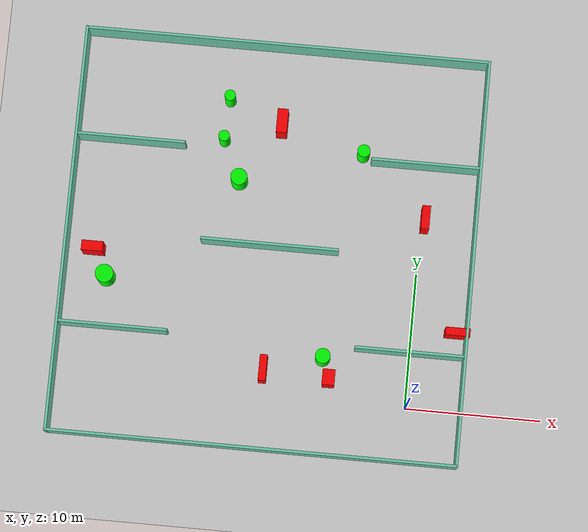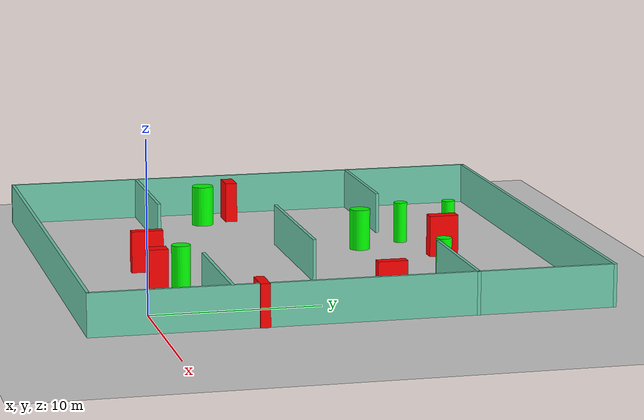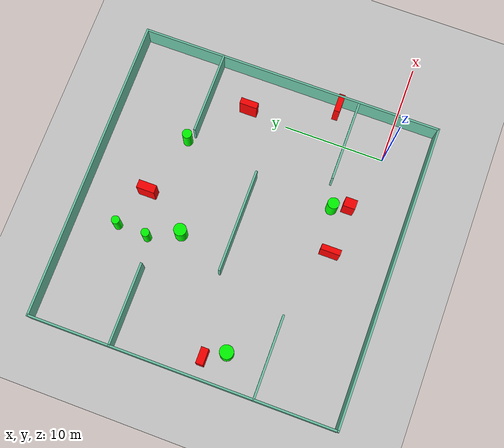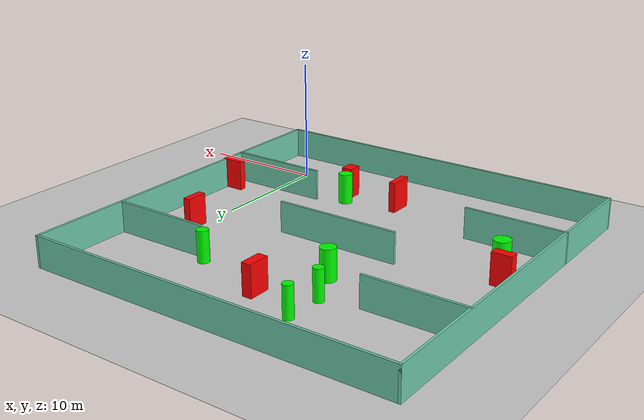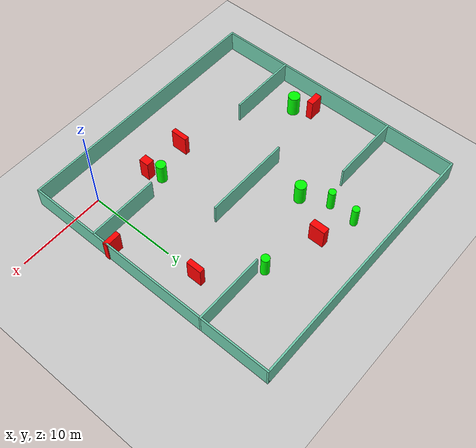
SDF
<sdf version="1.7">
 <world name="default">
  <light name="sun" type="directional">
   <pose>0 0 10 0 -0 0</pose>
   <diffuse>0.8 0.8 0.8 1</diffuse>
   <specular>0.2 0.2 0.2 1</specular>
   <attenuation>
    <range>1000</range>
    <constant>0.9</constant>
    <linear>0.01</linear>
    <quadratic>0.001</quadratic>
   </attenuation>
   <direction>-0.5 0.1 -0.9</direction>
   <spot><inner_angle>0</inner_angle><outer_angle>0</outer_angle><falloff>0</falloff></spot>
  </light>
  <model name="ground_plane">
   <static>1</static>
   <link name="link">
    <collision name="collision">
     <geometry><plane><normal>0 0 1</normal><size>100 100</size></plane></geometry>
     <surface>
      <contact><collide_bitmask>65535</collide_bitmask></contact>
      <friction><ode><mu>100</mu><mu2>50</mu2></ode></friction>
     </surface>
    </collision>
    <visual name="visual">
     <cast_shadows>0</cast_shadows>
     <geometry><plane><normal>0 0 1</normal><size>100 100</size></plane></geometry>
     <material>
      <script><uri>file://media/materials/scripts/gazebo.material</uri><name>Gazebo/Grey</name></script>
     </material>
    </visual>
   </link>
  </model>
  <gravity>0 0 -9.8</gravity>
  <magnetic_field>6e-06 2.3e-05 -4.2e-05</magnetic_field>
  <atmosphere type="adiabatic"/>
  <physics type="ode">
   <max_step_size>0.001</max_step_size>
   <real_time_factor>1</real_time_factor>
   <real_time_update_rate>1000</real_time_update_rate>
  </physics>
  <scene><ambient>0.4 0.4 0.4 1</ambient><background>0.7 0.7 0.7 1</background><shadows>1</shadows></scene>
  <spherical_coordinates>
   <surface_model>EARTH_WGS84</surface_model>
   <latitude_deg>0</latitude_deg>
   <longitude_deg>0</longitude_deg>
   <elevation>0</elevation>
   <heading_deg>0</heading_deg>
  </spherical_coordinates>
  <model name="my_base_walls">
   <link name="Wall_10">
    <collision name="Wall_10_Collision">
     <geometry><box><size>8.2 0.2 2.5</size></box></geometry>
     <pose>0 0 1.25 0 -0 0</pose>
    </collision>
    <visual name="Wall_10_Visual">
     <pose>0 0 1.25 0 -0 0</pose>
     <geometry><box><size>8.2 0.2 2.5</size></box></geometry>
     <material>
      <script><uri>file://media/materials/scripts/gazebo.material</uri><name>Gazebo/Grey</name></script>
      <ambient>0.435294 0.796078 0.67451 1</ambient>
     </material>
     <meta><layer>0</layer></meta>
    </visual>
    <pose>-11 -7 0 0 -0 0</pose>
   </link>
   <link name="Wall_12">
    <collision name="Wall_12_Collision">
     <geometry><box><size>8.2 0.2 2.5</size></box></geometry>
     <pose>0 0 1.25 0 -0 0</pose>
    </collision>
    <visual name="Wall_12_Visual">
     <pose>0 0 1.25 0 -0 0</pose>
     <geometry><box><size>8.2 0.2 2.5</size></box></geometry>
     <material>
      <script><uri>file://media/materials/scripts/gazebo.material</uri><name>Gazebo/Grey</name></script>
      <ambient>0.435294 0.796078 0.67451 1</ambient>
     </material>
     <meta><layer>0</layer></meta>
    </visual>
    <pose>-11 7 0 0 -0 0</pose>
   </link>
   <link name="Wall_14">
    <collision name="Wall_14_Collision">
     <geometry><box><size>8.2 0.2 2.5</size></box></geometry>
     <pose>0 0 1.25 0 -0 0</pose>
    </collision>
    <visual name="Wall_14_Visual">
     <pose>0 0 1.25 0 -0 0</pose>
     <geometry><box><size>8.2 0.2 2.5</size></box></geometry>
     <material>
      <script><uri>file://media/materials/scripts/gazebo.material</uri><name>Gazebo/Grey</name></script>
      <ambient>0.435294 0.796078 0.67451 1</ambient>
     </material>
     <meta><layer>0</layer></meta>
    </visual>
    <pose>11 7 0 0 -0 3.14159</pose>
   </link>
   <link name="Wall_16">
    <collision name="Wall_16_Collision">
     <geometry><box><size>10.2 0.2 2.5</size></box></geometry>
     <pose>0 0 1.25 0 -0 0</pose>
    </collision>
    <visual name="Wall_16_Visual">
     <pose>0 0 1.25 0 -0 0</pose>
     <geometry><box><size>10.2 0.2 2.5</size></box></geometry>
     <material>
      <script><uri>file://media/materials/scripts/gazebo.material</uri><name>Gazebo/Grey</name></script>
      <ambient>0.435294 0.796078 0.67451 1</ambient>
     </material>
     <meta><layer>0</layer></meta>
    </visual>
    <pose>0 0 0 0 -0 3.14159</pose>
   </link>
   <link name="Wall_2">
    <collision name="Wall_2_Collision">
     <geometry><box><size>30.2 0.2 2.5</size></box></geometry>
     <pose>0 0 1.25 0 -0 0</pose>
    </collision>
    <visual name="Wall_2_Visual">
     <pose>0 0 1.25 0 -0 0</pose>
     <geometry><box><size>30.2 0.2 2.5</size></box></geometry>
     <material>
      <script><uri>file://media/materials/scripts/gazebo.material</uri><name>Gazebo/Grey</name></script>
      <ambient>0.435294 0.796078 0.67451 1</ambient>
     </material>
     <meta><layer>0</layer></meta>
    </visual>
    <pose>0 -15 0 0 -0 3.14159</pose>
   </link>
   <link name="Wall_3">
    <collision name="Wall_3_Collision">
     <geometry><box><size>30.2 0.2 2.5</size></box></geometry>
     <pose>0 0 1.25 0 -0 0</pose>
    </collision>
    <visual name="Wall_3_Visual">
     <pose>0 0 1.25 0 -0 0</pose>
     <geometry><box><size>30.2 0.2 2.5</size></box></geometry>
     <material>
      <script><uri>file://media/materials/scripts/gazebo.material</uri><name>Gazebo/Grey</name></script>
      <ambient>0.435294 0.796078 0.67451 1</ambient>
     </material>
     <meta><layer>0</layer></meta>
    </visual>
    <pose>-15 0 0 0 -0 1.5708</pose>
   </link>
   <link name="Wall_4">
    <collision name="Wall_4_Collision">
     <geometry><box><size>30.2 0.2 2.5</size></box></geometry>
     <pose>0 0 1.25 0 -0 0</pose>
    </collision>
    <visual name="Wall_4_Visual">
     <pose>0 0 1.25 0 -0 0</pose>
     <geometry><box><size>30.2 0.2 2.5</size></box></geometry>
     <material>
      <script><uri>file://media/materials/scripts/gazebo.material</uri><name>Gazebo/Grey</name></script>
      <ambient>0.435294 0.796078 0.67451 1</ambient>
     </material>
     <meta><layer>0</layer></meta>
    </visual>
    <pose>0 15 0 0 -0 0</pose>
   </link>
   <link name="Wall_6">
    <collision name="Wall_6_Collision">
     <geometry><box><size>30.2 0.2 2.5</size></box></geometry>
     <pose>0 0 1.25 0 -0 0</pose>
    </collision>
    <visual name="Wall_6_Visual">
     <pose>0 0 1.25 0 -0 0</pose>
     <geometry><box><size>30.2 0.2 2.5</size></box></geometry>
     <material>
      <script><uri>file://media/materials/scripts/gazebo.material</uri><name>Gazebo/Grey</name></script>
      <ambient>0.435294 0.796078 0.67451 1</ambient>
     </material>
     <meta><layer>0</layer></meta>
    </visual>
    <pose>15 0 0 0 -0 1.5708</pose>
   </link>
   <link name="Wall_8">
    <collision name="Wall_8_Collision">
     <geometry><box><size>8.2 0.2 2.5</size></box></geometry>
     <pose>0 0 1.25 0 -0 0</pose>
    </collision>
    <visual name="Wall_8_Visual">
     <pose>0 0 1.25 0 -0 0</pose>
     <geometry><box><size>8.2 0.2 2.5</size></box></geometry>
     <material>
      <script><uri>file://media/materials/scripts/gazebo.material</uri><name>Gazebo/Grey</name></script>
      <ambient>0.435294 0.796078 0.67451 1</ambient>
     </material>
     <meta><layer>0</layer></meta>
    </visual>
    <pose>11 -7 0 0 -0 3.14159</pose>
   </link>
   <static>1</static>
   <pose>-11 11 0 0 -0 0</pose>
  </model>
  <model name="cylinder1">
   <static>1</static>
   <link name="link">
    <inertial>
     <mass>1</mass>
     <inertia><ixx>0.5</ixx><ixy>0</ixy><ixz>0</ixz><iyy>0.5</iyy><iyz>0</iyz><izz>1</izz></inertia>
    </inertial>
    <collision name="collision">
     <geometry><cylinder><radius>0.4031810531361316</radius><length>2.5</length></cylinder></geometry>
    </collision>
    <visual name="visual">
     <geometry><cylinder><radius>0.4031810531361316</radius><length>2.5</length></cylinder></geometry>
     <material>
      <ambient>0 1 0 1</ambient>
      <diffuse>0 1 0 1</diffuse>
      <specular>0.1 0.1 0.1 1</specular>
      <emissive>0 0 0 0</emissive>
     </material>
    </visual>
   </link>
   <pose>-14.935176975257683 21.79533496975396 1.25 0 0 0</pose>
  </model>
  <model name="cylinder2">
   <static>1</static>
   <link name="link">
    <inertial>
     <mass>1</mass>
     <inertia><ixx>0.5</ixx><ixy>0</ixy><ixz>0</ixz><iyy>0.5</iyy><iyz>0</iyz><izz>1</izz></inertia>
    </inertial>
    <collision name="collision">
     <geometry><cylinder><radius>0.5581228872185032</radius><length>2.5</length></cylinder></geometry>
    </collision>
    <visual name="visual">
     <geometry><cylinder><radius>0.5581228872185032</radius><length>2.5</length></cylinder></geometry>
     <material>
      <ambient>0 1 0 1</ambient>
      <diffuse>0 1 0 1</diffuse>
      <specular>0.1 0.1 0.1 1</specular>
      <emissive>0 0 0 0</emissive>
     </material>
    </visual>
   </link>
   <pose>-6.369325314999262 3.131984819764206 1.25 0 0 0</pose>
  </model>
  <model name="cylinder3">
   <static>1</static>
   <link name="link">
    <inertial>
     <mass>1</mass>
     <inertia><ixx>0.5</ixx><ixy>0</ixy><ixz>0</ixz><iyy>0.5</iyy><iyz>0</iyz><izz>1</izz></inertia>
    </inertial>
    <collision name="collision">
     <geometry><cylinder><radius>0.619128872372203</radius><length>2.5</length></cylinder></geometry>
    </collision>
    <visual name="visual">
     <geometry><cylinder><radius>0.619128872372203</radius><length>2.5</length></cylinder></geometry>
     <material>
      <ambient>0 1 0 1</ambient>
      <diffuse>0 1 0 1</diffuse>
      <specular>0.1 0.1 0.1 1</specular>
      <emissive>0 0 0 0</emissive>
     </material>
    </visual>
   </link>
   <pose>-13.721058331006574 15.775779391738624 1.25 0 0 0</pose>
  </model>
  <model name="cylinder4">
   <static>1</static>
   <link name="link">
    <inertial>
     <mass>1</mass>
     <inertia><ixx>0.5</ixx><ixy>0</ixy><ixz>0</ixz><iyy>0.5</iyy><iyz>0</iyz><izz>1</izz></inertia>
    </inertial>
    <collision name="collision">
     <geometry><cylinder><radius>0.4099761541894524</radius><length>2.5</length></cylinder></geometry>
    </collision>
    <visual name="visual">
     <geometry><cylinder><radius>0.4099761541894524</radius><length>2.5</length></cylinder></geometry>
     <material>
      <ambient>0 1 0 1</ambient>
      <diffuse>0 1 0 1</diffuse>
      <specular>0.1 0.1 0.1 1</specular>
      <emissive>0 0 0 0</emissive>
     </material>
    </visual>
   </link>
   <pose>-15.095583222027615 18.7371673018625 1.25 0 0 0</pose>
  </model>
  <model name="cylinder5">
   <static>1</static>
   <link name="link">
    <inertial>
     <mass>1</mass>
     <inertia><ixx>0.5</ixx><ixy>0</ixy><ixz>0</ixz><iyy>0.5</iyy><iyz>0</iyz><izz>1</izz></inertia>
    </inertial>
    <collision name="collision">
     <geometry><cylinder><radius>0.6730952366778085</radius><length>2.5</length></cylinder></geometry>
    </collision>
    <visual name="visual">
     <geometry><cylinder><radius>0.6730952366778085</radius><length>2.5</length></cylinder></geometry>
     <material>
      <ambient>0 1 0 1</ambient>
      <diffuse>0 1 0 1</diffuse>
      <specular>0.1 0.1 0.1 1</specular>
      <emissive>0 0 0 0</emissive>
     </material>
    </visual>
   </link>
   <pose>-22.86447514029606 7.741508180519176 1.25 0 0 0</pose>
  </model>
  <model name="cylinder6">
   <static>1</static>
   <link name="link">
    <inertial>
     <mass>1</mass>
     <inertia><ixx>0.5</ixx><ixy>0</ixy><ixz>0</ixz><iyy>0.5</iyy><iyz>0</iyz><izz>1</izz></inertia>
    </inertial>
    <collision name="collision">
     <geometry><cylinder><radius>0.46593984164833196</radius><length>2.5</length></cylinder></geometry>
    </collision>
    <visual name="visual">
     <geometry><cylinder><radius>0.46593984164833196</radius><length>2.5</length></cylinder></geometry>
     <material>
      <ambient>0 1 0 1</ambient>
      <diffuse>0 1 0 1</diffuse>
      <specular>0.1 0.1 0.1 1</specular>
      <emissive>0 0 0 0</emissive>
     </material>
    </visual>
   </link>
   <pose>-4.702997219077224 18.526491230407345 1.25 0 0 0</pose>
  </model>
  <model name="box1">
   <static>1</static>
   <link name="link">
    <inertial>
     <mass>1</mass>
     <inertia><ixx>0.083</ixx><ixy>0</ixy><ixz>0</ixz><iyy>0.083</iyy><iyz>0</iyz><izz>0.083</izz></inertia>
    </inertial>
    <collision name="collision">
     <geometry><box><size>0.7947871389542804 1.7791781089691685 2.5</size></box></geometry>
    </collision>
    <visual name="visual">
     <geometry><box><size>0.7947871389542804 1.7791781089691685 2.5</size></box></geometry>
     <material>
      <ambient>1 0 0 1</ambient>
      <diffuse>1 0 0 1</diffuse>
      <specular>0.1 0.1 0.1 1</specular>
      <emissive>0 0 0 0</emissive>
     </material>
    </visual>
    <sensor name="my_contact" type="contact">
     <contact><collision>box_collision</collision><topic>__default_topic__</topic></contact>
    </sensor>
   </link>
   <pose>-10.914010513543257 20.245252968255492 1.25 0 0 0</pose>
  </model>
  <model name="box2">
   <static>1</static>
   <link name="link">
    <inertial>
     <mass>1</mass>
     <inertia><ixx>0.083</ixx><ixy>0</ixy><ixz>0</ixz><iyy>0.083</iyy><iyz>0</iyz><izz>0.083</izz></inertia>
    </inertial>
    <collision name="collision">
     <geometry><box><size>1.8020024374212869 0.575602682358619 2.5</size></box></geometry>
    </collision>
    <visual name="visual">
     <geometry><box><size>1.8020024374212869 0.575602682358619 2.5</size></box></geometry>
     <material>
      <ambient>1 0 0 1</ambient>
      <diffuse>1 0 0 1</diffuse>
      <specular>0.1 0.1 0.1 1</specular>
      <emissive>0 0 0 0</emissive>
     </material>
    </visual>
    <sensor name="my_contact" type="contact">
     <contact><collision>box_collision</collision><topic>__default_topic__</topic></contact>
    </sensor>
   </link>
   <pose>3.3069075125603398 5.7852035788667795 1.25 0 0 0</pose>
  </model>
  <model name="box3">
   <static>1</static>
   <link name="link">
    <inertial>
     <mass>1</mass>
     <inertia><ixx>0.083</ixx><ixy>0</ixy><ixz>0</ixz><iyy>0.083</iyy><iyz>0</iyz><izz>0.083</izz></inertia>
    </inertial>
    <collision name="collision">
     <geometry><box><size>0.5431103856141106 1.9098796065481434 2.5</size></box></geometry>
    </collision>
    <visual name="visual">
     <geometry><box><size>0.5431103856141106 1.9098796065481434 2.5</size></box></geometry>
     <material>
      <ambient>1 0 0 1</ambient>
      <diffuse>1 0 0 1</diffuse>
      <specular>0.1 0.1 0.1 1</specular>
      <emissive>0 0 0 0</emissive>
     </material>
    </visual>
    <sensor name="my_contact" type="contact">
     <contact><collision>box_collision</collision><topic>__default_topic__</topic></contact>
    </sensor>
   </link>
   <pose>-10.657977771313863 1.8947616191684258 1.25 0 0 0</pose>
  </model>
  <model name="box4">
   <static>1</static>
   <link name="link">
    <inertial>
     <mass>1</mass>
     <inertia><ixx>0.083</ixx><ixy>0</ixy><ixz>0</ixz><iyy>0.083</iyy><iyz>0</iyz><izz>0.083</izz></inertia>
    </inertial>
    <collision name="collision">
     <geometry><box><size>0.9167050811458932 1.159280160384598 2.5</size></box></geometry>
    </collision>
    <visual name="visual">
     <geometry><box><size>0.9167050811458932 1.159280160384598 2.5</size></box></geometry>
     <material>
      <ambient>1 0 0 1</ambient>
      <diffuse>1 0 0 1</diffuse>
      <specular>0.1 0.1 0.1 1</specular>
      <emissive>0 0 0 0</emissive>
     </material>
    </visual>
    <sensor name="my_contact" type="contact">
     <contact><collision>box_collision</collision><topic>__default_topic__</topic></contact>
    </sensor>
   </link>
   <pose>-5.811394606080437 1.6254256342945492 1.25 0 0 0</pose>
  </model>
  <model name="box5">
   <static>1</static>
   <link name="link">
    <inertial>
     <mass>1</mass>
     <inertia><ixx>0.083</ixx><ixy>0</ixy><ixz>0</ixz><iyy>0.083</iyy><iyz>0</iyz><izz>0.083</izz></inertia>
    </inertial>
    <collision name="collision">
     <geometry><box><size>1.5812580681226163 0.7305363448720062 2.5</size></box></geometry>
    </collision>
    <visual name="visual">
     <geometry><box><size>1.5812580681226163 0.7305363448720062 2.5</size></box></geometry>
     <material>
      <ambient>1 0 0 1</ambient>
      <diffuse>1 0 0 1</diffuse>
      <specular>0.1 0.1 0.1 1</specular>
      <emissive>0 0 0 0</emissive>
     </material>
    </visual>
    <sensor name="my_contact" type="contact">
     <contact><collision>box_collision</collision><topic>__default_topic__</topic></contact>
    </sensor>
   </link>
   <pose>-23.95633700722745 9.69368922374861 1.25 0 0 0</pose>
  </model>
  <model name="box6">
   <static>1</static>
   <link name="link">
    <inertial>
     <mass>1</mass>
     <inertia><ixx>0.083</ixx><ixy>0</ixy><ixz>0</ixz><iyy>0.083</iyy><iyz>0</iyz><izz>0.083</izz></inertia>
    </inertial>
    <collision name="collision">
     <geometry><box><size>0.6040972731389372 1.7412483159978152 2.5</size></box></geometry>
    </collision>
    <visual name="visual">
     <geometry><box><size>0.6040972731389372 1.7412483159978152 2.5</size></box></geometry>
     <material>
      <ambient>1 0 0 1</ambient>
      <diffuse>1 0 0 1</diffuse>
      <specular>0.1 0.1 0.1 1</specular>
      <emissive>0 0 0 0</emissive>
     </material>
    </visual>
    <sensor name="my_contact" type="contact">
     <contact><collision>box_collision</collision><topic>__default_topic__</topic></contact>
    </sensor>
   </link>
   <pose>0.26262354899775175 13.999855241876855 1.25 0 0 0</pose>
  </model>
 </world>
</sdf>
